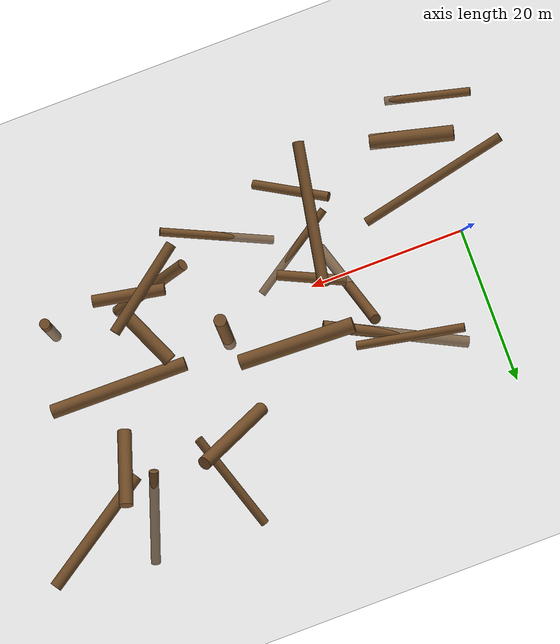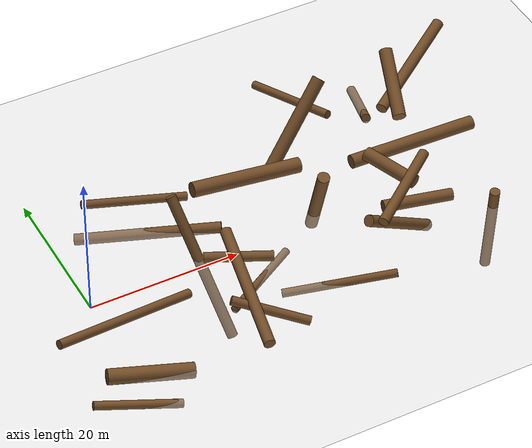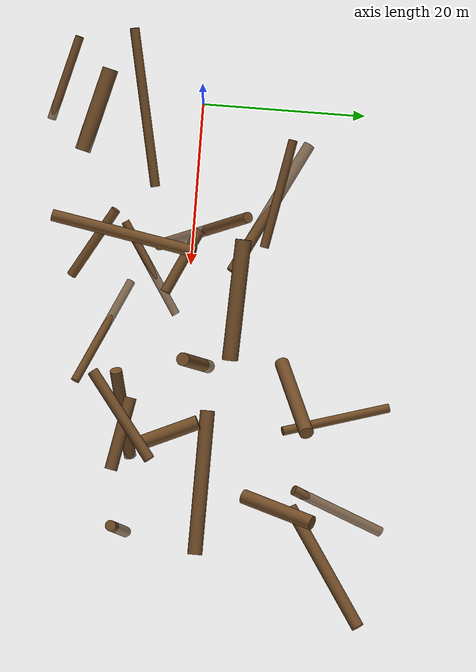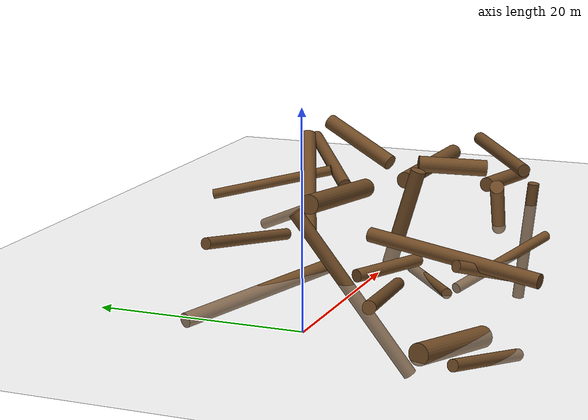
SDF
<sdf version='1.7'>
            <world name='default'>
                <light name='sun' type='directional'>
                <cast_shadows>1</cast_shadows>
                <pose>0 0 10 0 -0 0</pose>
                <diffuse>0.8 0.8 0.8 1</diffuse>
                <specular>0.2 0.2 0.2 1</specular>
                <attenuation>
                    <range>1000</range>
                    <constant>0.9</constant>
                    <linear>0.01</linear>
                    <quadratic>0.001</quadratic>
                </attenuation>
                <direction>-0.5 0.1 -0.9</direction>
                <spot>
                    <inner_angle>0</inner_angle>
                    <outer_angle>0</outer_angle>
                    <falloff>0</falloff>
                </spot>
                </light>
                <model name='ground_plane'>
                <static>1</static>
                <link name='link'>
                    <collision name='collision'>
                    <geometry>
                        <plane>
                        <normal>0 0 1</normal>
                        <size>100 100</size>
                        </plane>
                    </geometry>
                    <surface>
                        <contact>
                        <collide_bitmask>65535</collide_bitmask>
                        <ode/>
                        </contact>
                        <friction>
                        <ode>
                            <mu>100</mu>
                            <mu2>50</mu2>
                        </ode>
                        <torsional>
                            <ode/>
                        </torsional>
                        </friction>
                        <bounce/>
                    </surface>
                    <max_contacts>10</max_contacts>
                    </collision>
                    <visual name='visual'>
                    <cast_shadows>0</cast_shadows>
                    <geometry>
                        <plane>
                        <normal>0 0 1</normal>
                        <size>100 100</size>
                        </plane>
                    </geometry>
                    <material>
                        <script>
                        <uri>file://media/materials/scripts/gazebo.material</uri>
                        <name>Gazebo/Grey</name>
                        </script>
                    </material>
                    </visual>
                    <self_collide>0</self_collide>
                    <enable_wind>0</enable_wind>
                    <kinematic>0</kinematic>
                </link>
                </model>
                <gravity>0 0 -9.8</gravity>
                <magnetic_field>6e-06 2.3e-05 -4.2e-05</magnetic_field>
                <atmosphere type='adiabatic'/>
                <physics type='ode'>
                <max_step_size>0.001</max_step_size>
                <real_time_factor>1</real_time_factor>
                <real_time_update_rate>1000</real_time_update_rate>
                </physics>
                <scene>
                <ambient>0.4 0.4 0.4 1</ambient>
                <background>0.7 0.7 0.7 1</background>
                <shadows>1</shadows>
                </scene>
                <wind/>
                <spherical_coordinates>
                <surface_model>EARTH_WGS84</surface_model>
                <latitude_deg>0</latitude_deg>
                <longitude_deg>0</longitude_deg>
                <elevation>0</elevation>
                <heading_deg>0</heading_deg>
                </spherical_coordinates>
                <model name='cylinder_1'>
      <static>1</static>
      <link name='link'>
        <pose frame=''>0 0 0.1 0 -0 0</pose>
        <collision name='collision_trunk'>
          <pose frame=''>0 0 2 0 -0 0</pose>
          <geometry>
            <cylinder>
              <radius>0.7687020512991919</radius>
              <length>16.91608860984833</length>
            </cylinder>
          </geometry>
        </collision>
        <visual name='trunk'>
          <pose frame=''>0 0 2 0 -0 0</pose>
          <geometry>
            <cylinder>
              <radius>0.7687020512991919</radius>
              <length>16.91608860984833</length>
            </cylinder>
          </geometry>
          <material>
            <script>
              <uri>model://tree_simple/scripts</uri>
              <uri>model://tree_simple/materials/textures</uri>
              <name>TreeSimple/Trunk</name>
            </script>
          </material>
        </visual>
        <self_collide>0</self_collide>
        <kinematic>0</kinematic>
      </link>
      <pose frame=''>54.08857731094438 17.940191304624726 2.1629236265197873 151.6423926163315 158.42010993978846 57.99077635934408</pose>
    </model>
    <model name='cylinder_2'>
      <static>1</static>
      <link name='link'>
        <pose frame=''>0 0 0.1 0 -0 0</pose>
        <collision name='collision_trunk'>
          <pose frame=''>0 0 2 0 -0 0</pose>
          <geometry>
            <cylinder>
              <radius>0.8739859189768721</radius>
          <length>12.911569049082559</length>
            </cylinder>
          </geometry>
        </collision>
        <visual name='trunk'>
          <pose frame=''>0 0 2 0 -0 0</pose>
          <geometry>
            <cylinder>
              <radius>0.8739859189768721</radius>
          <length>12.911569049082559</length>
            </cylinder>
          </geometry>
          <material>
            <script>
              <uri>model://tree_simple/scripts</uri>
              <uri>model://tree_simple/materials/textures</uri>
              <name>TreeSimple/Trunk</name>
            </script>
          </material>
        </visual>
        <self_collide>0</self_collide>
        <kinematic>0</kinematic>
      </link>
      <pose frame=''>36.999998382388476 14.422038675622076 5.98583764111201 154.39500208059644 131.24317096394836 166.2396001511675</pose>
    </model>
    <model name='cylinder_3'>
      <static>1</static>
      <link name='link'>
        <pose frame=''>0 0 0.1 0 -0 0</pose>
        <collision name='collision_trunk'>
          <pose frame=''>0 0 2 0 -0 0</pose>
          <geometry>
            <cylinder>
              <radius>0.6497495569031337</radius>
          <length>8.702084627381705</length>
            </cylinder>
          </geometry>
        </collision>
        <visual name='trunk'>
          <pose frame=''>0 0 2 0 -0 0</pose>
          <geometry>
            <cylinder>
              <radius>0.6497495569031337</radius>
          <length>8.702084627381705</length>
            </cylinder>
          </geometry>
          <material>
            <script>
              <uri>model://tree_simple/scripts</uri>
              <uri>model://tree_simple/materials/textures</uri>
              <name>TreeSimple/Trunk</name>
            </script>
          </material>
        </visual>
        <self_collide>0</self_collide>
        <kinematic>0</kinematic>
      </link>
      <pose frame=''>21.55174190499746 -1.945799825237394 0.673542941045615 51.49200932625131 98.98953353231286 29.7520313710049</pose>
    </model>
    <model name='cylinder_4'>
      <static>1</static>
      <link name='link'>
        <pose frame=''>0 0 0.1 0 -0 0</pose>
        <collision name='collision_trunk'>
          <pose frame=''>0 0 2 0 -0 0</pose>
          <geometry>
            <cylinder>
              <radius>0.5029598214184545</radius>
          <length>13.02725043473612</length>
            </cylinder>
          </geometry>
        </collision>
        <visual name='trunk'>
          <pose frame=''>0 0 2 0 -0 0</pose>
          <geometry>
            <cylinder>
              <radius>0.5029598214184545</radius>
          <length>13.02725043473612</length>
            </cylinder>
          </geometry>
          <material>
            <script>
              <uri>model://tree_simple/scripts</uri>
              <uri>model://tree_simple/materials/textures</uri>
              <name>TreeSimple/Trunk</name>
            </script>
          </material>
        </visual>
        <self_collide>0</self_collide>
        <kinematic>0</kinematic>
      </link>
      <pose frame=''>18.944321864708378 -6.087448650022967 -0.26517497511106036 24.22819377625697 102.2427194123115 125.33233073307666</pose>
    </model>
    <model name='cylinder_5'>
      <static>1</static>
      <link name='link'>
        <pose frame=''>0 0 0.1 0 -0 0</pose>
        <collision name='collision_trunk'>
          <pose frame=''>0 0 2 0 -0 0</pose>
          <geometry>
            <cylinder>
              <radius>0.8910782543352642</radius>
          <length>17.54464414683111</length>
            </cylinder>
          </geometry>
        </collision>
        <visual name='trunk'>
          <pose frame=''>0 0 2 0 -0 0</pose>
          <geometry>
            <cylinder>
              <radius>0.8910782543352642</radius>
          <length>17.54464414683111</length>
            </cylinder>
          </geometry>
          <material>
            <script>
              <uri>model://tree_simple/scripts</uri>
              <uri>model://tree_simple/materials/textures</uri>
              <name>TreeSimple/Trunk</name>
            </script>
          </material>
        </visual>
        <self_collide>0</self_collide>
        <kinematic>0</kinematic>
      </link>
      <pose frame=''>48.8347337520898 3.326484242486419 4.930204427410617 37.11415627776648 20.396149640066305 172.19083327137372</pose>
    </model>
    <model name='cylinder_6'>
      <static>1</static>
      <link name='link'>
        <pose frame=''>0 0 0.1 0 -0 0</pose>
        <collision name='collision_trunk'>
          <pose frame=''>0 0 2 0 -0 0</pose>
          <geometry>
            <cylinder>
              <radius>0.5475430225138624</radius>
          <length>13.69283567114438</length>
            </cylinder>
          </geometry>
        </collision>
        <visual name='trunk'>
          <pose frame=''>0 0 2 0 -0 0</pose>
          <geometry>
            <cylinder>
              <radius>0.5475430225138624</radius>
          <length>13.69283567114438</length>
            </cylinder>
          </geometry>
          <material>
            <script>
              <uri>model://tree_simple/scripts</uri>
              <uri>model://tree_simple/materials/textures</uri>
              <name>TreeSimple/Trunk</name>
            </script>
          </material>
        </visual>
        <self_collide>0</self_collide>
        <kinematic>0</kinematic>
      </link>
      <pose frame=''>38.39493966316322 17.162069257974068 4.110844447800485 4.481450523736596 12.27850119088945 63.196915906514754</pose>
    </model>
    <model name='cylinder_7'>
      <static>1</static>
      <link name='link'>
        <pose frame=''>0 0 0.1 0 -0 0</pose>
        <collision name='collision_trunk'>
          <pose frame=''>0 0 2 0 -0 0</pose>
          <geometry>
            <cylinder>
              <radius>0.7717320938451784</radius>
          <length>9.049351982740472</length>
            </cylinder>
          </geometry>
        </collision>
        <visual name='trunk'>
          <pose frame=''>0 0 2 0 -0 0</pose>
          <geometry>
            <cylinder>
              <radius>0.7717320938451784</radius>
          <length>9.049351982740472</length>
            </cylinder>
          </geometry>
          <material>
            <script>
              <uri>model://tree_simple/scripts</uri>
              <uri>model://tree_simple/materials/textures</uri>
              <name>TreeSimple/Trunk</name>
            </script>
          </material>
        </visual>
        <self_collide>0</self_collide>
        <kinematic>0</kinematic>
      </link>
      <pose frame=''>43.63148213662189 -7.262294714128332 5.401370226266248 56.04604492405829 64.35686721283683 27.583446269371283</pose>
    </model>
    <model name='cylinder_8'>
      <static>1</static>
      <link name='link'>
        <pose frame=''>0 0 0.1 0 -0 0</pose>
        <collision name='collision_trunk'>
          <pose frame=''>0 0 2 0 -0 0</pose>
          <geometry>
            <cylinder>
              <radius>0.722188035611111</radius>
          <length>18.605029813742274</length>
            </cylinder>
          </geometry>
        </collision>
        <visual name='trunk'>
          <pose frame=''>0 0 2 0 -0 0</pose>
          <geometry>
            <cylinder>
              <radius>0.722188035611111</radius>
          <length>18.605029813742274</length>
            </cylinder>
          </geometry>
          <material>
            <script>
              <uri>model://tree_simple/scripts</uri>
              <uri>model://tree_simple/materials/textures</uri>
              <name>TreeSimple/Trunk</name>
            </script>
          </material>
        </visual>
        <self_collide>0</self_collide>
        <kinematic>0</kinematic>
      </link>
      <pose frame=''>14.029493815219297 8.331776010406156 -0.5468243902766545 48.284153123722476 17.532608233011103 177.43194071864198</pose>
    </model>
    <model name='cylinder_9'>
      <static>1</static>
      <link name='link'>
        <pose frame=''>0 0 0.1 0 -0 0</pose>
        <collision name='collision_trunk'>
          <pose frame=''>0 0 2 0 -0 0</pose>
          <geometry>
            <cylinder>
              <radius>0.6778706877013732</radius>
          <length>19.610690725129082</length>
            </cylinder>
          </geometry>
        </collision>
        <visual name='trunk'>
          <pose frame=''>0 0 2 0 -0 0</pose>
          <geometry>
            <cylinder>
              <radius>0.6778706877013732</radius>
          <length>19.610690725129082</length>
            </cylinder>
          </geometry>
          <material>
            <script>
              <uri>model://tree_simple/scripts</uri>
              <uri>model://tree_simple/materials/textures</uri>
              <name>TreeSimple/Trunk</name>
            </script>
          </material>
        </visual>
        <self_collide>0</self_collide>
        <kinematic>0</kinematic>
      </link>
      <pose frame=''>15.338172810493184 2.2770250267741154 0.5820420663220007 153.59441052998636 12.048071202740235 30.72347517902446</pose>
    </model>
    <model name='cylinder_10'>
      <static>1</static>
      <link name='link'>
        <pose frame=''>0 0 0.1 0 -0 0</pose>
        <collision name='collision_trunk'>
          <pose frame=''>0 0 2 0 -0 0</pose>
          <geometry>
            <cylinder>
              <radius>0.984268774169247</radius>
          <length>10.610684636414163</length>
            </cylinder>
          </geometry>
        </collision>
        <visual name='trunk'>
          <pose frame=''>0 0 2 0 -0 0</pose>
          <geometry>
            <cylinder>
              <radius>0.984268774169247</radius>
          <length>10.610684636414163</length>
            </cylinder>
          </geometry>
          <material>
            <script>
              <uri>model://tree_simple/scripts</uri>
              <uri>model://tree_simple/materials/textures</uri>
              <name>TreeSimple/Trunk</name>
            </script>
          </material>
        </visual>
        <self_collide>0</self_collide>
        <kinematic>0</kinematic>
      </link>
      <pose frame=''>3.7032796918892608 -13.648713891818772 -0.351829683123265 8.055078839741107 109.0558754703225 36.02952587034036</pose>
    </model>
    <model name='cylinder_11'>
      <static>1</static>
      <link name='link'>
        <pose frame=''>0 0 0.1 0 -0 0</pose>
        <collision name='collision_trunk'>
          <pose frame=''>0 0 2 0 -0 0</pose>
          <geometry>
            <cylinder>
              <radius>0.5824482816601226</radius>
          <length>19.585455763627856</length>
            </cylinder>
          </geometry>
        </collision>
        <visual name='trunk'>
          <pose frame=''>0 0 2 0 -0 0</pose>
          <geometry>
            <cylinder>
              <radius>0.5824482816601226</radius>
          <length>19.585455763627856</length>
            </cylinder>
          </geometry>
          <material>
            <script>
              <uri>model://tree_simple/scripts</uri>
              <uri>model://tree_simple/materials/textures</uri>
              <name>TreeSimple/Trunk</name>
            </script>
          </material>
        </visual>
        <self_collide>0</self_collide>
        <kinematic>0</kinematic>
      </link>
      <pose frame=''>3.422442052252006 -6.650644067040545 3.4463434929617414 37.12009138147307 174.58881134882577 76.19636516082124</pose>
    </model>
        <model name='cylinder_12'>
      <static>1</static>
      <link name='link'>
        <pose frame=''>0 0 0.1 0 -0 0</pose>
        <collision name='collision_trunk'>
          <pose frame=''>0 0 2 0 -0 0</pose>
          <geometry>
            <cylinder>
              <radius>0.6639376204349212</radius>
          <length>14.064855425068918</length>
            </cylinder>
          </geometry>
        </collision>
        <visual name='trunk'>
          <pose frame=''>0 0 2 0 -0 0</pose>
          <geometry>
            <cylinder>
              <radius>0.6639376204349212</radius>
          <length>14.064855425068918</length>
            </cylinder>
          </geometry>
          <material>
            <script>
              <uri>model://tree_simple/scripts</uri>
              <uri>model://tree_simple/materials/textures</uri>
              <name>TreeSimple/Trunk</name>
            </script>
          </material>
        </visual>
        <self_collide>0</self_collide>
        <kinematic>0</kinematic>
      </link>
      <pose frame=''>52.93173093093299 -6.775590776656898 -2.432536733264408 87.9581439033994 59.575548386970375 114.32786160671286</pose>
    </model>
    <model name='cylinder_13'>
      <static>1</static>
      <link name='link'>
        <pose frame=''>0 0 0.1 0 -0 0</pose>
        <collision name='collision_trunk'>
          <pose frame=''>0 0 2 0 -0 0</pose>
          <geometry>
            <cylinder>
              <radius>0.6727985681276183</radius>
          <length>12.74258287189209</length>
            </cylinder>
          </geometry>
        </collision>
        <visual name='trunk'>
          <pose frame=''>0 0 2 0 -0 0</pose>
          <geometry>
            <cylinder>
              <radius>0.6727985681276183</radius>
          <length>12.74258287189209</length>
            </cylinder>
          </geometry>
          <material>
            <script>
              <uri>model://tree_simple/scripts</uri>
              <uri>model://tree_simple/materials/textures</uri>
              <name>TreeSimple/Trunk</name>
            </script>
          </material>
        </visual>
        <self_collide>0</self_collide>
        <kinematic>0</kinematic>
      </link>
      <pose frame=''>41.13982136277686 -5.643606290249776 8.759542474345526 117.50606884843918 99.20424313265126 15.080672253079035</pose>
    </model>
    <model name='cylinder_14'>
      <static>1</static>
      <link name='link'>
        <pose frame=''>0 0 0.1 0 -0 0</pose>
        <collision name='collision_trunk'>
          <pose frame=''>0 0 2 0 -0 0</pose>
          <geometry>
            <cylinder>
              <radius>0.7287654625269233</radius>
          <length>18.298070458598104</length>
            </cylinder>
          </geometry>
        </collision>
        <visual name='trunk'>
          <pose frame=''>0 0 2 0 -0 0</pose>
          <geometry>
            <cylinder>
              <radius>0.7287654625269233</radius>
          <length>18.298070458598104</length>
            </cylinder>
          </geometry>
          <material>
            <script>
              <uri>model://tree_simple/scripts</uri>
              <uri>model://tree_simple/materials/textures</uri>
              <name>TreeSimple/Trunk</name>
            </script>
          </material>
        </visual>
        <self_collide>0</self_collide>
        <kinematic>0</kinematic>
      </link>
      <pose frame=''>17.3860957150286 -6.402005751134254 3.434851038895758 1.3997789918123082 54.314902046049625 131.8981258897701</pose>
    </model>
    <model name='cylinder_15'>
      <static>1</static>
      <link name='link'>
        <pose frame=''>0 0 0.1 0 -0 0</pose>
        <collision name='collision_trunk'>
          <pose frame=''>0 0 2 0 -0 0</pose>
          <geometry>
            <cylinder>
              <radius>0.5564838970976809</radius>
          <length>13.55682888632291</length>
            </cylinder>
          </geometry>
        </collision>
        <visual name='trunk'>
          <pose frame=''>0 0 2 0 -0 0</pose>
          <geometry>
            <cylinder>
              <radius>0.5564838970976809</radius>
          <length>13.55682888632291</length>
            </cylinder>
          </geometry>
          <material>
            <script>
              <uri>model://tree_simple/scripts</uri>
              <uri>model://tree_simple/materials/textures</uri>
              <name>TreeSimple/Trunk</name>
            </script>
          </material>
        </visual>
        <self_collide>0</self_collide>
        <kinematic>0</kinematic>
      </link>
      <pose frame=''>8.82236257553579 10.466200802536065 5.1210371699604025 117.08444144519869 124.33220602047935 149.74853151317174</pose>
    </model>
    <model name='cylinder_62'>
  <static>1</static>
  <link name='link'>
    <pose frame=''>0 0 0.1 0 -0 0</pose>
    <collision name='collision_trunk'>
      <pose frame=''>0 0 2 0 -0 0</pose>
      <geometry>
        <cylinder>
          <radius>0.5286360586</radius>
          <length>14.4306708117</length>
        </cylinder>
      </geometry>
    </collision>
    <visual name='trunk'>
      <pose frame=''>0 0 2 0 -0 0</pose>
      <geometry>
        <cylinder>
          <radius>0.5286360586</radius>
          <length>14.4306708117</length>
        </cylinder>
      </geometry>
      <material>
        <script>
          <uri>model://tree_simple/scripts</uri>
          <uri>model://tree_simple/materials/textures</uri>
          <name>TreeSimple/Trunk</name>
        </script>
      </material>
    </visual>
    <self_collide>0</self_collide>
    <kinematic>0</kinematic>
  </link>
  <pose frame=''>30.7941868177 -11.0079710868 0.1960522473 11.271332965 324.3954266 183.1572607367</pose>
</model>

<model name='cylinder_63'>
  <static>1</static>
  <link name='link'>
    <pose frame=''>0 0 0.1 0 -0 0</pose>
    <collision name='collision_trunk'>
      <pose frame=''>0 0 2 0 -0 0</pose>
      <geometry>
        <cylinder>
          <radius>0.9776730491</radius>
          <length>14.7761810125</length>
        </cylinder>
      </geometry>
    </collision>
    <visual name='trunk'>
      <pose frame=''>0 0 2 0 -0 0</pose>
      <geometry>
        <cylinder>
          <radius>0.9776730491</radius>
          <length>14.7761810125</length>
        </cylinder>
      </geometry>
      <material>
        <script>
          <uri>model://tree_simple/scripts</uri>
          <uri>model://tree_simple/materials/textures</uri>
          <name>TreeSimple/Trunk</name>
        </script>
      </material>
    </visual>
    <self_collide>0</self_collide>
    <kinematic>0</kinematic>
  </link>
  <pose frame=''>26.4152507255 5.8831465705 6.0633831718 249.9449161693 340.2663416823 58.2398105324</pose>
</model>

<model name='cylinder_64'>
  <static>1</static>
  <link name='link'>
    <pose frame=''>0 0 0.1 0 -0 0</pose>
    <collision name='collision_trunk'>
      <pose frame=''>0 0 2 0 -0 0</pose>
      <geometry>
        <cylinder>
          <radius>0.6134702806</radius>
          <length>13.0880310041</length>
        </cylinder>
      </geometry>
    </collision>
    <visual name='trunk'>
      <pose frame=''>0 0 2 0 -0 0</pose>
      <geometry>
        <cylinder>
          <radius>0.6134702806</radius>
          <length>13.0880310041</length>
        </cylinder>
      </geometry>
      <material>
        <script>
          <uri>model://tree_simple/scripts</uri>
          <uri>model://tree_simple/materials/textures</uri>
          <name>TreeSimple/Trunk</name>
        </script>
      </material>
    </visual>
    <self_collide>0</self_collide>
    <kinematic>0</kinematic>
  </link>
  <pose frame=''>48.0973699643 18.482065228 -1.5666608135 305.6244265071 332.1301741547 132.1442989458</pose>
</model>

<model name='cylinder_65'>
  <static>1</static>
  <link name='link'>
    <pose frame=''>0 0 0.1 0 -0 0</pose>
    <collision name='collision_trunk'>
      <pose frame=''>0 0 2 0 -0 0</pose>
      <geometry>
        <cylinder>
          <radius>0.7418631046</radius>
          <length>12.4556008553</length>
        </cylinder>
      </geometry>
    </collision>
    <visual name='trunk'>
      <pose frame=''>0 0 2 0 -0 0</pose>
      <geometry>
        <cylinder>
          <radius>0.7418631046</radius>
          <length>12.4556008553</length>
        </cylinder>
      </geometry>
      <material>
        <script>
          <uri>model://tree_simple/scripts</uri>
          <uri>model://tree_simple/materials/textures</uri>
          <name>TreeSimple/Trunk</name>
        </script>
      </material>
    </visual>
    <self_collide>0</self_collide>
    <kinematic>0</kinematic>
  </link>
  <pose frame=''>37.3189373248 -7.2345412302 3.9282455637 117.0544699702 106.2139296336 288.1753101757</pose>
</model>

<model name='cylinder_66'>
  <static>1</static>
  <link name='link'>
    <pose frame=''>0 0 0.1 0 -0 0</pose>
    <collision name='collision_trunk'>
      <pose frame=''>0 0 2 0 -0 0</pose>
      <geometry>
        <cylinder>
          <radius>0.8916513765</radius>
          <length>7.4957529178</length>
        </cylinder>
      </geometry>
    </collision>
    <visual name='trunk'>
      <pose frame=''>0 0 2 0 -0 0</pose>
      <geometry>
        <cylinder>
          <radius>0.8916513765</radius>
          <length>7.4957529178</length>
        </cylinder>
      </geometry>
      <material>
        <script>
          <uri>model://tree_simple/scripts</uri>
          <uri>model://tree_simple/materials/textures</uri>
          <name>TreeSimple/Trunk</name>
        </script>
      </material>
    </visual>
    <self_collide>0</self_collide>
    <kinematic>0</kinematic>
  </link>
  <pose frame=''>40.2136446443 0.9035802668 6.6184284829 36.6483931186 89.6908320407 318.2337080975</pose>
</model>

<model name='cylinder_67'>
  <static>1</static>
  <link name='link'>
    <pose frame=''>0 0 0.1 0 -0 0</pose>
    <collision name='collision_trunk'>
      <pose frame=''>0 0 2 0 -0 0</pose>
      <geometry>
        <cylinder>
          <radius>0.592019048</radius>
          <length>9.9986253624</length>
        </cylinder>
      </geometry>
    </collision>
    <visual name='trunk'>
      <pose frame=''>0 0 2 0 -0 0</pose>
      <geometry>
        <cylinder>
          <radius>0.592019048</radius>
          <length>9.9986253624</length>
        </cylinder>
      </geometry>
      <material>
        <script>
          <uri>model://tree_simple/scripts</uri>
          <uri>model://tree_simple/materials/textures</uri>
          <name>TreeSimple/Trunk</name>
        </script>
      </material>
    </visual>
    <self_collide>0</self_collide>
    <kinematic>0</kinematic>
  </link>
  <pose frame=''>19.9989537681 -13.1496342807 1.1480564237 322.3497897623 247.7095173945 356.1895702911</pose>
</model>

<model name='cylinder_68'>
  <static>1</static>
  <link name='link'>
    <pose frame=''>0 0 0.1 0 -0 0</pose>
    <collision name='collision_trunk'>
      <pose frame=''>0 0 2 0 -0 0</pose>
      <geometry>
        <cylinder>
          <radius>0.8031632075</radius>
          <length>10.7997751069</length>
        </cylinder>
      </geometry>
    </collision>
    <visual name='trunk'>
      <pose frame=''>0 0 2 0 -0 0</pose>
      <geometry>
        <cylinder>
          <radius>0.8031632075</radius>
          <length>10.7997751069</length>
        </cylinder>
      </geometry>
      <material>
        <script>
          <uri>model://tree_simple/scripts</uri>
          <uri>model://tree_simple/materials/textures</uri>
          <name>TreeSimple/Trunk</name>
        </script>
      </material>
    </visual>
    <self_collide>0</self_collide>
    <kinematic>0</kinematic>
  </link>
  <pose frame=''>32.1506269457 2.1304304986 0.5776301263 122.2327773564 279.6188497858 12.4758501523</pose>
</model>

<model name='cylinder_69'>
  <static>1</static>
  <link name='link'>
    <pose frame=''>0 0 0.1 0 -0 0</pose>
    <collision name='collision_trunk'>
      <pose frame=''>0 0 2 0 -0 0</pose>
      <geometry>
        <cylinder>
          <radius>0.8829845949</radius>
          <length>9.6773925428</length>
        </cylinder>
      </geometry>
    </collision>
    <visual name='trunk'>
      <pose frame=''>0 0 2 0 -0 0</pose>
      <geometry>
        <cylinder>
          <radius>0.8829845949</radius>
          <length>9.6773925428</length>
        </cylinder>
      </geometry>
      <material>
        <script>
          <uri>model://tree_simple/scripts</uri>
          <uri>model://tree_simple/materials/textures</uri>
          <name>TreeSimple/Trunk</name>
        </script>
      </material>
    </visual>
    <self_collide>0</self_collide>
    <kinematic>0</kinematic>
  </link>
  <pose frame=''>48.757607569 10.9991442328 5.6983438333 56.7204622249 296.4712860022 271.6304436531</pose>
</model>

<model name='cylinder_70'>
  <static>1</static>
  <link name='link'>
    <pose frame=''>0 0 0.1 0 -0 0</pose>
    <collision name='collision_trunk'>
      <pose frame=''>0 0 2 0 -0 0</pose>
      <geometry>
        <cylinder>
          <radius>0.5365792908</radius>
          <length>10.7784773377</length>
        </cylinder>
      </geometry>
    </collision>
    <visual name='trunk'>
      <pose frame=''>0 0 2 0 -0 0</pose>
      <geometry>
        <cylinder>
          <radius>0.5365792908</radius>
          <length>10.7784773377</length>
        </cylinder>
      </geometry>
      <material>
        <script>
          <uri>model://tree_simple/scripts</uri>
          <uri>model://tree_simple/materials/textures</uri>
          <name>TreeSimple/Trunk</name>
        </script>
      </material>
    </visual>
    <self_collide>0</self_collide>
    <kinematic>0</kinematic>
  </link>
  <pose frame=''>0.0626086302 -17.7645416085 -0.094379457 48.8914177624 43.8153203953 183.4864291086</pose>
</model>
            </world>
            </sdf>
